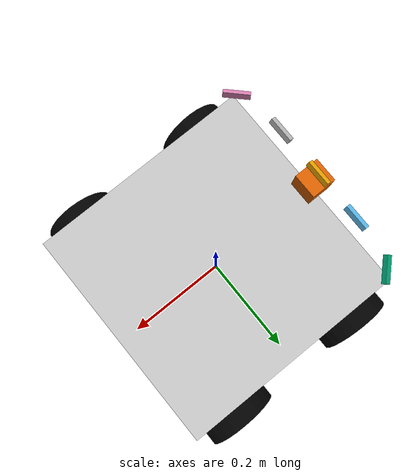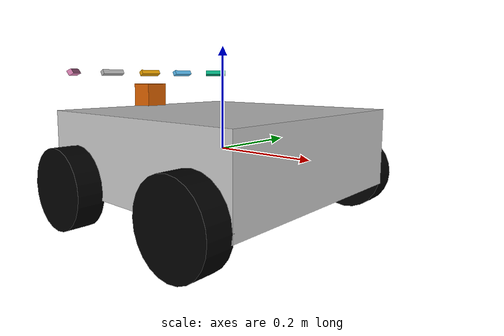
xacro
<?xml version="1.0" encoding="UTF-8"?>
<robot xmlns:xacro="http://www.ros.org/wiki/xacro" name="ansrr_bot">
  <xacro:include filename="$(cwd)/macs.xacro" />
  <link name="base_link">
    <visual>
      <xacro:geo_box/>
      <material name="silver">
        <color rgba="0.75 0.75 0.75 1"/>
      </material>
    </visual>
    <collision>
      <xacro:geo_box />
    </collision>
    <xacro:inertia_macro mass="1" ixx= "${box_ixx}" iyy="${box_iyy}" izz="${box_izz}"/>
  </link>

  <xacro:wheel w_name="left_front" x="${front_x}" y="${wheel_y}" z="${wheel_z}"/>
  <xacro:wheel w_name="left_rear" x="${rear_x}" y="${wheel_y}" z="${wheel_z}"/>
  <xacro:wheel w_name="right_front" x="${front_x}" y="-${wheel_y}" z="${wheel_z}"/>
  <xacro:wheel w_name="right_rear" x="${rear_x}" y="-${wheel_y}" z="${wheel_z}"/>

  <link name="lidar">
    <visual>
      <geometry>
        <box size="0.05 0.05 0.05"/>
      </geometry>
    </visual>
    <collision>
      <geometry>
        <box size="0.05 0.05 0.05"/>
      </geometry>
    </collision>
    <xacro:inertia_macro mass="0.05" ixx="0.01" iyy="0.01" izz="0.01"/>
  </link>
  <joint name="base_to_lidar" type="fixed">
    <axis xyz="0 0 1"/>
    <parent link="base_link"/>
    <child link="lidar"/>
    <origin rpy="0 0 0" xyz="-.2286 0 0.1"/>
  </joint>

  <gazebo>
    <plugin name="differential_drive_controller" filename="libgazebo_ros_diff_drive.so">
      <leftJoint>base_to_left_rear</leftJoint>
      <rightJoint>base_to_right_rear</rightJoint>
      <robotBaseFrame>base_link</robotBaseFrame>
      <wheelSeparation>0.4064</wheelSeparation>
      <wheelDiameter>${wheel_radius*2}</wheelDiameter>
      <publishWheelJointState>true</publishWheelJointState>
    </plugin>
    <plugin name="differential_drive_controller" filename="libgazebo_ros_diff_drive.so">
      <leftJoint>base_to_left_front</leftJoint>
      <rightJoint>base_to_right_front</rightJoint>
      <robotBaseFrame>base_link</robotBaseFrame>
      <wheelSeparation>0.4064</wheelSeparation>
      <wheelDiameter>${wheel_radius*2}</wheelDiameter>
      <publishWheelJointState>true</publishWheelJointState>
    </plugin>

  </gazebo>

  <gazebo reference="lidar">
    <sensor name="lds_lfcd_sensor" type="ray">
      <pose>0 0 0 0 0 0</pose>
      <visualize>0</visualize>
      <update_rate>40</update_rate>
      <ray>
        <scan>
          <horizontal>
            <samples>360</samples>
            <resolution>1</resolution>
            <min_angle>0</min_angle>
            <max_angle>6.28</max_angle>
          </horizontal>
        </scan>
        <range>
          <min>0.1</min>
          <max>11</max>
          <resolution>0.01</resolution>
        </range>
      </ray>
      <plugin name="gazebo_ros_lds_lfcd_controller  " filename="libgazebo_ros_laser.so">
        <topicName>/scan</topicName>
        <frameName>lidar</frameName>
      </plugin>
    </sensor>
  </gazebo>

  <xacro:us_link link_name="us_link_1">
    <origin rpy="0 .5 -2.356" xyz="-.21 -0.2 0.15"/>
  </xacro:us_link>
  <xacro:ultrasound_macro ref="us_link_1" sens_name="us1" plugin_name="gazebo_ros_us1"
    topic_name="ultrasound_1" frame_name="us_link_1" />

  <xacro:us_link link_name="us_link_2">
    <origin rpy="0 .5 3.14" xyz="-.2286 -0.1 0.15"/>
  </xacro:us_link>
  <xacro:ultrasound_macro ref="us_link_2" sens_name="us2" plugin_name="gazebo_ros_us2"
    topic_name="ultrasound_2" frame_name="us_link_2" />

  <xacro:us_link link_name="us_link_3">
    <origin rpy="0 0.5 3.14" xyz="-.2286 0 0.15"/>
  </xacro:us_link>
  <xacro:ultrasound_macro ref="us_link_3" sens_name="us3" plugin_name="gazebo_ros_us3"
    topic_name="ultrasound_3" frame_name="us_link_3" />

  <xacro:us_link link_name="us_link_4">
    <origin rpy="0 0.5 3.14" xyz="-.2286 0.1 0.15"/>
  </xacro:us_link>
  <xacro:ultrasound_macro ref="us_link_4" sens_name="us4" plugin_name="gazebo_ros_us4"
    topic_name="ultrasound_4" frame_name="us_link_4" />

  <xacro:us_link link_name="us_link_5">
    <origin rpy="0 0.5 2.356" xyz="-.21 0.2 0.15"/>
  </xacro:us_link>
  <xacro:ultrasound_macro ref="us_link_5" sens_name="us5" plugin_name="gazebo_ros_us5"
    topic_name="ultrasound_5" frame_name="us_link_5" />

</robot>

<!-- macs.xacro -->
<robot xmlns:xacro="http://www.ros.org/wiki/xacro">
<xacro:property name="box_x" value="0.4572"/>
<xacro:property name="box_y" value="0.4572"/>
<xacro:property name="box_z" value="0.1524"/>

<xacro:property name="box_mass" value= "1"/>
<xacro:property name="box_ixx" value= "0.01935"/>
<xacro:property name="box_iyy" value= "0.01935"/>
<xacro:property name="box_izz" value= "0.03483"/>

<xacro:property name="length" value="0.0508"/>
<xacro:property name="wheel_radius" value="0.0762"/>

<xacro:property name="wheel_mass" value= "0.1"/>
<xacro:property name="wheel_ixx" value= "5.685e-4"/>
<xacro:property name="wheel_iyy" value= "5.685e-4"/>
<xacro:property name="wheel_izz" value= "2.903e-4"/>

<xacro:property name="front_x" value="0.1524"/>
<xacro:property name="rear_x" value="-0.1524"/>
<xacro:property name="wheel_y" value="0.25"/>
<xacro:property name="wheel_z" value="-0.06096"/>

<xacro:macro name="ultrasound_macro" params="ref sens_name plugin_name topic_name frame_name">
  <gazebo reference="${ref}">
    <sensor name="${sens_name}" type="ray">
      <pose>0 0 0 0 0 0</pose>
      <visualize>1</visualize>
      <update_rate>40</update_rate>
      <ray>
        <scan>
          <horizontal>
            <samples>10</samples>
            <resolution>5</resolution>
            <min_angle>-0.1484</min_angle>
            <max_angle>0.1484</max_angle>
          </horizontal>
          <vertical>
            <samples>10</samples>
            <resolution>5</resolution>
            <min_angle>-0.2967</min_angle>
            <max_angle>0</max_angle>
          </vertical>
        </scan>
        <range>
          <min>0.1</min>
          <max>0.7</max>
          <resolution>0.01</resolution>
        </range>
      </ray>
      <plugin filename="libgazebo_ros_range.so" name="${plugin_name}">
        <gaussianNoise>0.005</gaussianNoise>
        <alwaysOn>true</alwaysOn>
        <updateRate>50</updateRate>
        <topicName>${topic_name}</topicName>
        <frameName>${frame_name}</frameName>
        <radiation>ULTRASOUND</radiation>
        <fov>0.2967</fov>
      </plugin>
    </sensor>
  </gazebo>
</xacro:macro>

<xacro:macro name="geo_box">
  <geometry>
    <box size="${box_x} ${box_y} ${box_z}"/>
  </geometry>
</xacro:macro>

<xacro:macro name="inertia_macro" params="mass ixx iyy izz">
  <inertial>
    <mass value="${mass}"/>
    <inertia ixx="${ixx}" iyy="${iyy}" izz="${izz}" ixy="0" ixz="0" iyz="0"/>
  </inertial>
</xacro:macro>

<xacro:macro name="us_link" params="link_name *orig">
  <link name="${link_name}">
    <visual>
      <geometry>
        <box size="0.01 0.05 0.01"/>
      </geometry>
    </visual>
    <collision>
      <geometry>
        <box size="0.05 0.05 0.05"/>
      </geometry>
    </collision>
    <xacro:inertia_macro mass="0.05" ixx="0.01" iyy="0.01" izz="0.01"/>
  </link>
  <joint name="base_to_${link_name}" type="fixed">
    <axis xyz="0 0 1"/>
    <parent link="base_link"/>
    <child link="${link_name}"/>
    <xacro:insert_block name="orig"/>
  </joint>
</xacro:macro>

<xacro:macro name="wheel" params="w_name x y z">
  <link name="${w_name}">
    <visual>
      <geometry>
        <cylinder length="${length}" radius="${wheel_radius}"/>
      </geometry>
      <material name="black">
        <color rgba="0 0 0 1"/>
      </material>
    </visual>
    <collision>
      <geometry>
        <cylinder length="${length}" radius="${wheel_radius}"/>
      </geometry>
    </collision>
    <xacro:inertia_macro mass="${wheel_mass}" ixx="${wheel_ixx}" iyy="${wheel_iyy}" izz="${wheel_izz}"/>
  </link>
  <joint name="base_to_${w_name}" type="continuous">
    <axis xyz="0 0 1"/>
    <parent link="base_link"/>
    <child link="${w_name}"/>
    <origin rpy="1.5708 0 3.14" xyz="${x} ${y} ${z}"/>
  </joint>
  <transmission name="${w_name}_joint_trans" type="SimpleTransmission">
      <actuator name="${w_name}_motor"/>
      <joint name="$base_to_{w_name}"/>
      <mechanicalReduction>1</mechanicalReduction>
      <motorTorqueConstant>1</motorTorqueConstant>
  </transmission>

</xacro:macro>
</robot>
